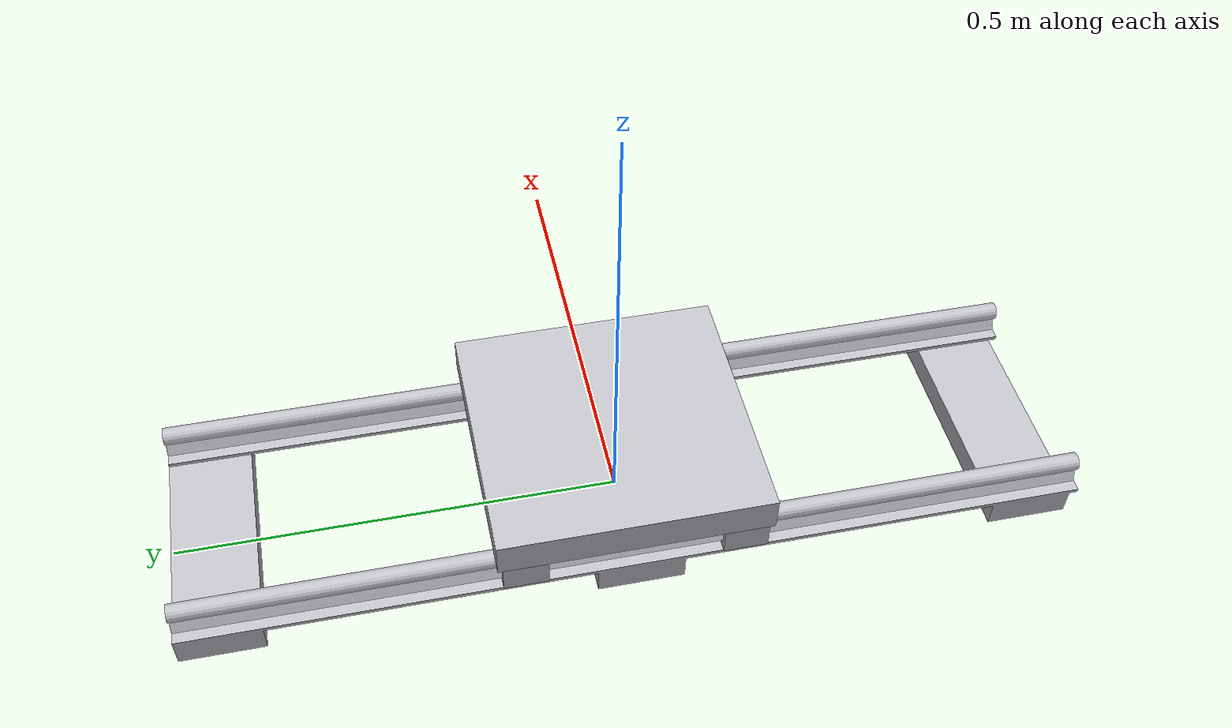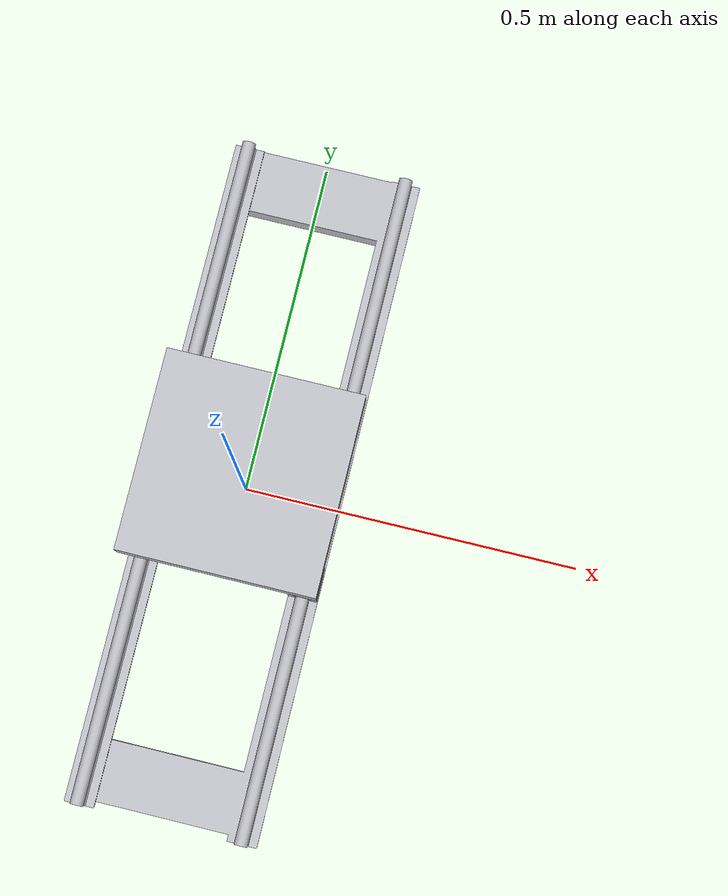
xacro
<?xml version="1.0" ?>
<robot name="base_link_linear" xmlns:xacro="http://www.ros.org/wiki/xacro">

<xacro:include filename="$(find base_link_linear_description)/urdf/materials.xacro" />
<xacro:include filename="$(find base_link_linear_description)/urdf/base_link_linear.trans" />
<xacro:include filename="$(find base_link_linear_description)/urdf/base_link_linear.gazebo" />
<link name="base_link">
  <inertial>
    <origin xyz="0.0005821337173981269 0.003590015784231563 0.02023659657573182" rpy="0 0 0"/>
    <mass value="8.757773116770874"/>
    <inertia ixx="1.058645" iyy="0.075511" izz="1.131598" ixy="2.7e-05" iyz="0.000241" ixz="-8.1e-05"/>
  </inertial>
  <visual>
    <origin xyz="0 0 0" rpy="0 0 0"/>
    <geometry>
      <mesh filename="file://$(find base_link_linear_description)/meshes/base_link.stl" scale="0.001 0.001 0.001"/>
    </geometry>
    <material name="silver"/>
  </visual>
  <collision>
    <origin xyz="0 0 0" rpy="0 0 0"/>
    <geometry>
      <mesh filename="file://$(find base_link_linear_description)/meshes/base_link.stl" scale="0.001 0.001 0.001"/>
    </geometry>
  </collision>
</link>

<link name="block4_1">
  <inertial>
    <origin xyz="0.026412832343615356 -0.26974632633557555 0.044172667934380634" rpy="0 0 0"/>
    <mass value="0.31187716641464713"/>
    <inertia ixx="9.5e-05" iyy="0.000104" izz="0.000134" ixy="0.0" iyz="0.0" ixz="-0.0"/>
  </inertial>
  <visual>
    <origin xyz="0.144716 -0.150007 -0.022279" rpy="0 0 0"/>
    <geometry>
      <mesh filename="file://$(find base_link_linear_description)/meshes/block4_1.stl" scale="0.001 0.001 0.001"/>
    </geometry>
    <material name="silver"/>
  </visual>
  <collision>
    <origin xyz="0.144716 -0.150007 -0.022279" rpy="0 0 0"/>
    <geometry>
      <mesh filename="file://$(find base_link_linear_description)/meshes/block4_1.stl" scale="0.001 0.001 0.001"/>
    </geometry>
  </collision>
</link>

<link name="block1_1">
  <inertial>
    <origin xyz="-0.02708729840770817 -0.26974632633557555 0.04417266793438055" rpy="0 0 0"/>
    <mass value="0.31187716641464713"/>
    <inertia ixx="9.5e-05" iyy="0.000104" izz="0.000134" ixy="-0.0" iyz="0.0" ixz="-0.0"/>
  </inertial>
  <visual>
    <origin xyz="-0.149489 -0.150007 -0.022279" rpy="0 0 0"/>
    <geometry>
      <mesh filename="file://$(find base_link_linear_description)/meshes/block1_1.stl" scale="0.001 0.001 0.001"/>
    </geometry>
    <material name="silver"/>
  </visual>
  <collision>
    <origin xyz="-0.149489 -0.150007 -0.022279" rpy="0 0 0"/>
    <geometry>
      <mesh filename="file://$(find base_link_linear_description)/meshes/block1_1.stl" scale="0.001 0.001 0.001"/>
    </geometry>
  </collision>
</link>

<link name="rail_2_v1_1">
  <inertial>
    <origin xyz="-1.3421247573031092e-07 -0.5000000436520409 1.490116086078075e-10" rpy="0 0 0"/>
    <mass value="2.466150233067987"/>
    <inertia ixx="0.205574" iyy="0.000123" izz="0.205574" ixy="-0.0" iyz="0.0" ixz="0.0"/>
  </inertial>
  <visual>
    <origin xyz="-0.122356 -0.498326 -0.058" rpy="0 0 0"/>
    <geometry>
      <mesh filename="file://$(find base_link_linear_description)/meshes/rail_2_v1_1.stl" scale="0.001 0.001 0.001"/>
    </geometry>
    <material name="silver"/>
  </visual>
  <collision>
    <origin xyz="-0.122356 -0.498326 -0.058" rpy="0 0 0"/>
    <geometry>
      <mesh filename="file://$(find base_link_linear_description)/meshes/rail_2_v1_1.stl" scale="0.001 0.001 0.001"/>
    </geometry>
  </collision>
</link>

<link name="rail_1_v1_1">
  <inertial>
    <origin xyz="-1.3421247570255534e-07 -0.5000000436520409 1.490116086078075e-10" rpy="0 0 0"/>
    <mass value="2.466150233067987"/>
    <inertia ixx="0.205574" iyy="0.000123" izz="0.205574" ixy="0.0" iyz="0.0" ixz="0.0"/>
  </inertial>
  <visual>
    <origin xyz="0.117644 -0.498326 -0.058" rpy="0 0 0"/>
    <geometry>
      <mesh filename="file://$(find base_link_linear_description)/meshes/rail_1_v1_1.stl" scale="0.001 0.001 0.001"/>
    </geometry>
    <material name="silver"/>
  </visual>
  <collision>
    <origin xyz="0.117644 -0.498326 -0.058" rpy="0 0 0"/>
    <geometry>
      <mesh filename="file://$(find base_link_linear_description)/meshes/rail_1_v1_1.stl" scale="0.001 0.001 0.001"/>
    </geometry>
  </collision>
</link>

<link name="platform_v2_1">
  <inertial>
    <origin xyz="-0.002400134212475728 1.3912482277333992e-17 0.07" rpy="0 0 0"/>
    <mass value="27.665936445492147"/>
    <inertia ixx="0.210463" iyy="0.203244" izz="0.40633" ixy="0.0" iyz="-0.0" ixz="0.0"/>
  </inertial>
  <visual>
    <origin xyz="-0.002356 -0.0 -0.03" rpy="0 0 0"/>
    <geometry>
      <mesh filename="file://$(find base_link_linear_description)/meshes/platform_v2_1.stl" scale="0.001 0.001 0.001"/>
    </geometry>
    <material name="silver"/>
  </visual>
  <collision>
    <origin xyz="-0.002356 -0.0 -0.03" rpy="0 0 0"/>
    <geometry>
      <mesh filename="file://$(find base_link_linear_description)/meshes/platform_v2_1.stl" scale="0.001 0.001 0.001"/>
    </geometry>
  </collision>
</link>

<link name="block3_1">
  <inertial>
    <origin xyz="-0.02708729840770817 0.2747113263355756 0.04417266793438055" rpy="0 0 0"/>
    <mass value="0.31187716641464713"/>
    <inertia ixx="9.5e-05" iyy="0.000104" izz="0.000134" ixy="0.0" iyz="0.0" ixz="-0.0"/>
  </inertial>
  <visual>
    <origin xyz="-0.149489 0.149472 -0.022279" rpy="0 0 0"/>
    <geometry>
      <mesh filename="file://$(find base_link_linear_description)/meshes/block3_1.stl" scale="0.001 0.001 0.001"/>
    </geometry>
    <material name="silver"/>
  </visual>
  <collision>
    <origin xyz="-0.149489 0.149472 -0.022279" rpy="0 0 0"/>
    <geometry>
      <mesh filename="file://$(find base_link_linear_description)/meshes/block3_1.stl" scale="0.001 0.001 0.001"/>
    </geometry>
  </collision>
</link>

<link name="block2_1">
  <inertial>
    <origin xyz="0.026391835320814905 0.2747113263355756 0.04417266793438073" rpy="0 0 0"/>
    <mass value="0.31187716641464713"/>
    <inertia ixx="9.5e-05" iyy="0.000104" izz="0.000134" ixy="0.0" iyz="0.0" ixz="-0.0"/>
  </inertial>
  <visual>
    <origin xyz="0.144716 0.149472 -0.022279" rpy="0 0 0"/>
    <geometry>
      <mesh filename="file://$(find base_link_linear_description)/meshes/block2_1.stl" scale="0.001 0.001 0.001"/>
    </geometry>
    <material name="silver"/>
  </visual>
  <collision>
    <origin xyz="0.144716 0.149472 -0.022279" rpy="0 0 0"/>
    <geometry>
      <mesh filename="file://$(find base_link_linear_description)/meshes/block2_1.stl" scale="0.001 0.001 0.001"/>
    </geometry>
  </collision>
</link>

<joint name="Rigid 4" type="fixed">
  <origin xyz="-0.147072 0.150007 -0.007721" rpy="0 0 0"/>
  <parent link="platform_v2_1"/>
  <child link="block4_1"/>
</joint>

<joint name="Rigid 6" type="fixed">
  <origin xyz="0.147133 0.150007 -0.007721" rpy="0 0 0"/>
  <parent link="platform_v2_1"/>
  <child link="block1_1"/>
</joint>

<joint name="Rigid 8" type="fixed">
  <origin xyz="0.122356 0.498326 0.058" rpy="0 0 0"/>
  <parent link="base_link"/>
  <child link="rail_2_v1_1"/>
</joint>

<joint name="Rigid 9" type="fixed">
  <origin xyz="-0.117644 0.498326 0.058" rpy="0 0 0"/>
  <parent link="base_link"/>
  <child link="rail_1_v1_1"/>
</joint>

<joint name="Slider 11" type="prismatic">
  <origin xyz="0.002356 0.0 0.03" rpy="0 0 0"/>
  <parent link="base_link"/>
  <child link="platform_v2_1"/>
  <axis xyz="0.0 1.0 0.0"/>
  <limit upper="0.34" lower="-0.35" effort="100" velocity="100"/>
</joint>

<joint name="Rigid 12" type="fixed">
  <origin xyz="0.147133 -0.149472 -0.007721" rpy="0 0 0"/>
  <parent link="platform_v2_1"/>
  <child link="block3_1"/>
</joint>

<joint name="Rigid 13" type="fixed">
  <origin xyz="-0.147072 -0.149472 -0.007721" rpy="0 0 0"/>
  <parent link="platform_v2_1"/>
  <child link="block2_1"/>
</joint>

</robot>

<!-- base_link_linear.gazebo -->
<robot name="base_link_linear" xmlns:xacro="http://www.ros.org/wiki/xacro" >

<xacro:property name="body_color" value="Gazebo/Silver" />

<gazebo>
  <plugin name="control" filename="libgazebo_ros_control.so"/>
</gazebo>
<gazebo reference="base_link">
  <material>${body_color}</material>
  <mu1>0.2</mu1>
  <mu2>0.2</mu2>
  <self_collide>true</self_collide>
  <gravity>true</gravity>
</gazebo>

<gazebo reference="block4_1">
  <material>${body_color}</material>
  <mu1>0.2</mu1>
  <mu2>0.2</mu2>
  <self_collide>true</self_collide>
</gazebo>

<gazebo reference="block3_1">
  <material>${body_color}</material>
  <mu1>0.2</mu1>
  <mu2>0.2</mu2>
  <self_collide>true</self_collide>
</gazebo>

<gazebo reference="block1_1">
  <material>${body_color}</material>
  <mu1>0.2</mu1>
  <mu2>0.2</mu2>
  <self_collide>true</self_collide>
</gazebo>

<gazebo reference="block2_1">
  <material>${body_color}</material>
  <mu1>0.2</mu1>
  <mu2>0.2</mu2>
  <self_collide>true</self_collide>
</gazebo>

<gazebo reference="rail_2_v1_1">
  <material>${body_color}</material>
  <mu1>0.2</mu1>
  <mu2>0.2</mu2>
  <self_collide>true</self_collide>
</gazebo>

<gazebo reference="rail_1_v1_1">
  <material>${body_color}</material>
  <mu1>0.2</mu1>
  <mu2>0.2</mu2>
  <self_collide>true</self_collide>
</gazebo>

<gazebo reference="platform_v2_1">
  <material>${body_color}</material>
  <mu1>0.2</mu1>
  <mu2>0.2</mu2>
  <self_collide>true</self_collide>
</gazebo>

</robot>
